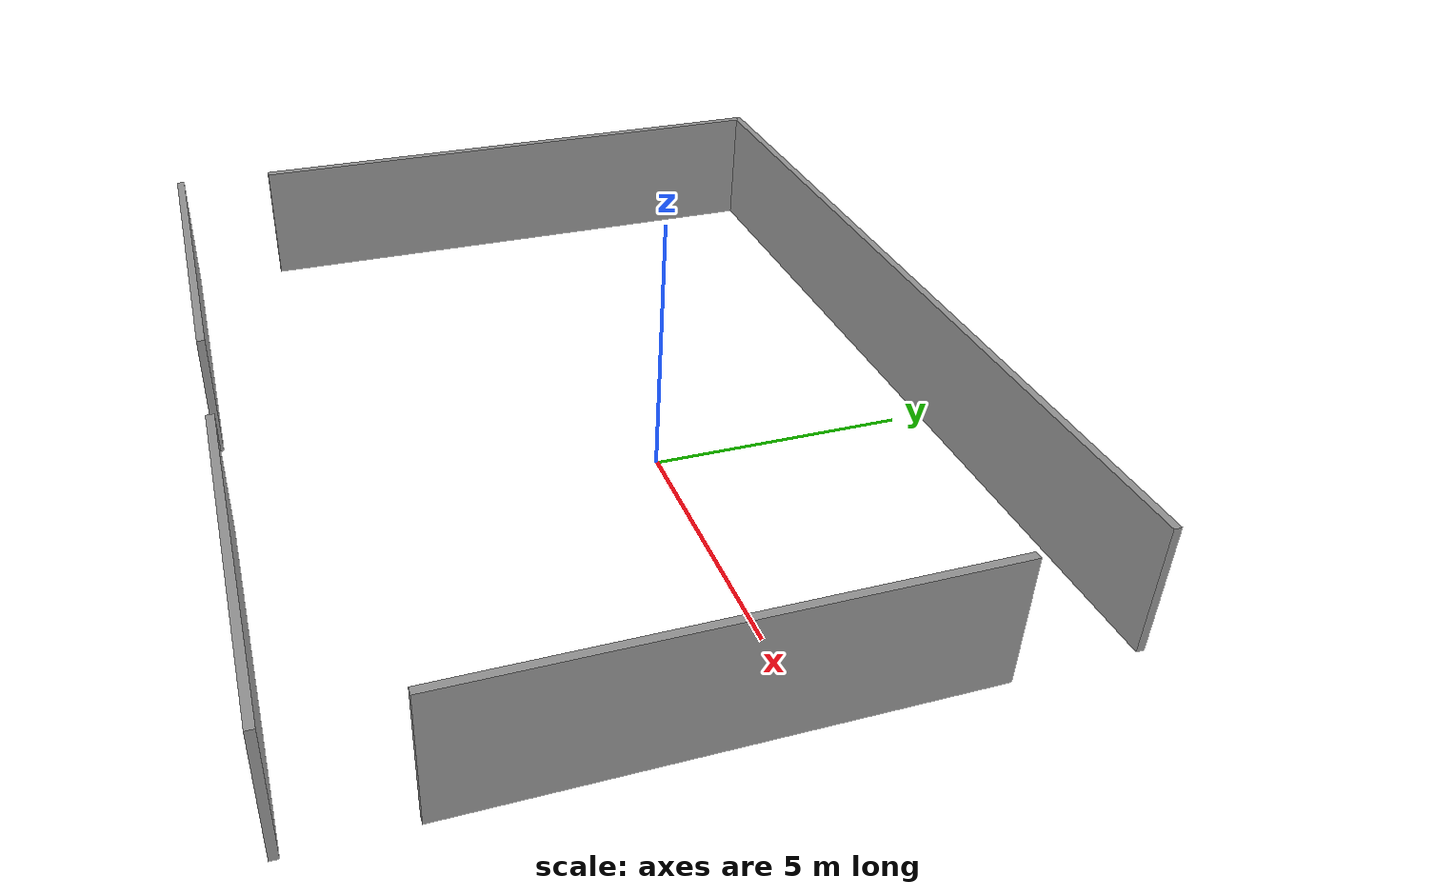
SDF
<?xml version='1.0'?>
<sdf version='1.7'>
  <model name='airport_wall'>
    <pose>-1.51318 -1.15033 0 0 -0 0</pose>
    <link name='Wall_0_Left'>
      <collision name='Wall_0_Left_Collision'>
        <geometry>
          <box>
            <size>7.25 0.15 2.5</size>
          </box>
        </geometry>
        <pose>0 0 1.25 0 -0 0</pose>
      </collision>
      <visual name='Wall_0_Left_Visual'>
        <pose>0 0 1.25 0 -0 0</pose>
        <geometry>
          <box>
            <size>7.25 0.15 2.5</size>
          </box>
        </geometry>
        <material>
          <script>
            <uri>file://media/materials/scripts/gazebo.material</uri>
            <name>Gazebo/Grey</name>
          </script>
          <ambient>1 1 1 1</ambient>
        </material>
      </visual>
      <pose>-4.875 -6.8 0 0 -0 0</pose>
    </link>

    <link name='Wall_0_Right'>
      <collision name='Wall_0_Right_Collision'>
        <geometry>
          <box>
            <size>7.25 0.15 2.5</size>
          </box>
        </geometry>
        <pose>0 0 1.25 0 -0 0</pose>
      </collision>
      <visual name='Wall_0_Right_Visual'>
        <pose>0 0 1.25 0 -0 0</pose>
        <geometry>
          <box>
            <size>7.25 0.15 2.5</size>
          </box>
        </geometry>
        <material>
          <script>
            <uri>file://media/materials/scripts/gazebo.material</uri>
            <name>Gazebo/Grey</name>
          </script>
          <ambient>1 1 1 1</ambient>
        </material>
      </visual>
      <pose>4.875 -6.8 0 0 -0 0</pose>
    </link>
    <link name='Wall_2'>
      <collision name='Wall_2_Collision'>
        <geometry>
          <box>
            <size>11.7 0.15 2.5</size>
          </box>
        </geometry>
        <pose>0 0 1.25 0 -0 0</pose>
      </collision>
      <visual name='Wall_2_Visual'>
        <pose>0 0 1.25 0 -0 0</pose>
        <geometry>
          <box>
            <size>11.7 0.15 2.5</size>
          </box>
        </geometry>
        <material>
          <script>
            <uri>file://media/materials/scripts/gazebo.material</uri>
            <name>Gazebo/Grey</name>
          </script>
          <ambient>1 1 1 1</ambient>
        </material>
        <meta>
          <layer>0</layer>
        </meta>
      </visual>
      <pose>-8.42518 1.0 0 0 -0 1.5708</pose>

    </link>
    <link name='Wall_3'>
      <collision name='Wall_3_Collision'>
        <geometry>
          <box>
            <size>17 0.15 2.5</size>
          </box>
        </geometry>
        <pose>0 0 1.25 0 -0 0</pose>
      </collision>
      <visual name='Wall_3_Visual'>
        <pose>0 0 1.25 0 -0 0</pose>
        <geometry>
          <box>
            <size>17 0.15 2.5</size>
          </box>
        </geometry>
        <material>
          <script>
            <uri>file://media/materials/scripts/gazebo.material</uri>
            <name>Gazebo/Grey</name>
          </script>
          <ambient>1 1 1 1</ambient>
        </material>
        <meta>
          <layer>0</layer>
        </meta>
      </visual>
      <pose>-0.000177 6.8 0 0 -0 0</pose>
    </link>
    <link name='Wall_5'>
      <collision name='Wall_5_Collision'>
        <geometry>
          <box>
            <size>9.25 0.15 2.5</size>
          </box>
        </geometry>
        <pose>0 0 1.25 0 -0 0</pose>
      </collision>
      <visual name='Wall_5_Visual'>
        <pose>0 0 1.25 0 -0 0</pose>
        <geometry>
          <box>
            <size>9.25 0.15 2.5</size>
          </box>
        </geometry>
        <material>
          <script>
            <uri>file://media/materials/scripts/gazebo.material</uri>
            <name>Gazebo/Grey</name>
          </script>
          <ambient>1 1 1 1</ambient>
        </material>
        <meta>
          <layer>0</layer>
        </meta>
      </visual>
      <pose>8.42518 -0.152674 0 0 -0 -1.5708</pose>
    </link>
    <static>1</static>
  </model>
</sdf>
